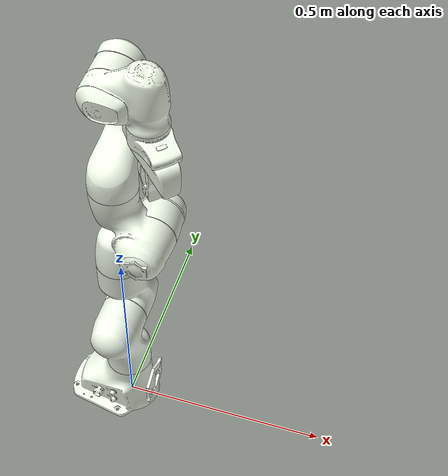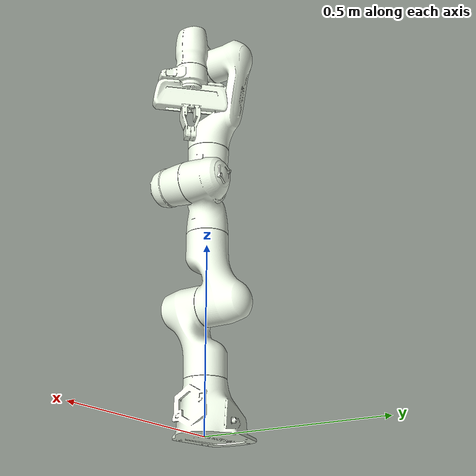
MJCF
<mujoco model="mujoco_panda_model">

    <compiler angle="radian"/>

    <asset>
        <mesh name="link0_collision" file="meshes/collision/link0.stl"/>
        <mesh name="link1_collision" file="meshes/collision/link1.stl"/>
        <mesh name="link2_collision" file="meshes/collision/link2.stl"/>
        <mesh name="link3_collision" file="meshes/collision/link3.stl"/>
        <mesh name="link4_collision" file="meshes/collision/link4.stl"/>
        <mesh name="link5_collision" file="meshes/collision/link5.stl"/>
        <mesh name="link6_collision" file="meshes/collision/link6.stl"/>
        <mesh name="link7_collision" file="meshes/collision/link7.stl"/>
        <mesh name="hand_collision" file="meshes/collision/hand.stl"/>
        <mesh name="finger_collision" file="meshes/collision/finger.stl" scale='1.75 1.0 1.75'/>
        <mesh name="link0_visual" file="meshes/visual/link0.stl"/>
        <mesh name="link1_visual" file="meshes/visual/link1.stl"/>
        <mesh name="link2_visual" file="meshes/visual/link2.stl"/>
        <mesh name="link3_visual" file="meshes/visual/link3.stl"/>
        <mesh name="link4_visual" file="meshes/visual/link4.stl"/>
        <mesh name="link5_visual" file="meshes/visual/link5.stl"/>
        <mesh name="link6_visual" file="meshes/visual/link6.stl"/>
        <mesh name="link7_visual" file="meshes/visual/link7.stl"/>
        <mesh name="hand_visual" file="meshes/visual/hand.stl"/>
        <mesh name="finger_visual" file="meshes/visual/finger.stl" scale='1.75 1.0 1.75'/>
    </asset>
    <default>
        <default class="panda">
            <joint pos="0 0 0" axis="0 0 1" limited="true" damping="100"/>
            <position forcelimited="true" ctrllimited="true" user="1002 40 2001 -0.005 0.005"/>
            <default class="visual">
                <geom contype="0" conaffinity="0" group="0" type="mesh" rgba=".95 .99 .92 1" mass="0"/>
            </default>

            <default class="collision">
                <geom contype="1" conaffinity="1" group="3" type="mesh" rgba=".5 .6 .7 1"/>
            </default>
             <default class="panda_finger">
                <joint damping="100" armature='5'/>
            </default>
        </default>
    </default>

    <compiler meshdir=""/>

    <option cone="elliptic">
        <flag gravity="disable"/>
    </option>

    <worldbody>
        <body name="panda_link0" childclass="panda" >
            <inertial pos="0 0 0" quat="1 0 0 0" mass="3.06" diaginertia="0.3 0.3 0.3" />
            <geom class="visual" mesh="link0_visual"/>

            <body name="panda_link1" pos="0 0 0.333">
                <inertial pos="3.875e-03 2.081e-03 -0.1750" quat="1 0 0 0" mass="2.36" fullinertia="7.0337e-01 7.0661e-01 9.1170e-03 -1.3900e-04 6.7720e-03 1.9169e-02" />
                <joint name="panda_joint1" range="-2.8973 2.8973"/>
                <geom class="visual" mesh="link1_visual"/>
                <geom class="collision" mesh="link1_collision"/>

                <body name="panda_link2" pos="0 0 0" quat="0.707107 -0.707107 0 0">
                    <inertial pos="-3.141e-03 -2.872e-02 3.495e-03" quat="1 0 0 0" mass="2.38" fullinertia="7.9620e-03 2.8110e-02 2.5995e-02 -3.9250e-03 1.0254e-02 7.0400e-04" />
                    <joint name="panda_joint2" range="-1.7628 1.7628"/>
                    <geom class="visual" mesh="link2_visual"/>
                    <geom class="collision" mesh="link2_collision"/>

                    <body name="panda_link3" pos="0 -0.316 0" quat="0.707107 0.707107 0 0">
                        <inertial pos="2.7518e-02 3.9252e-02 -6.6502e-02" quat="1 0 0 0" mass="2.65" fullinertia="3.7242e-02 3.6155e-02 1.0830e-02 -4.7610e-03 -1.1396e-02 -1.2805e-02" />
                        <joint name="panda_joint3" range="-2.8973 2.8973"/>
                        <geom class="visual" mesh="link3_visual"/>
                        <geom class="collision" mesh="link3_collision"/>

                        <body name="panda_link4" pos="0.0825 0 0" quat="0.707107 0.707107 0 0">
                            <inertial pos="-5.317e-02 1.04419e-01 2.7454e-02" quat="1 0 0 0" mass="2.695" fullinertia="2.5853e-02 1.9552e-02 2.8323e-02 7.7960e-03 -1.3320e-03 8.6410e-03" />
                            <joint name="panda_joint4" range="-3.0718 -0.0698"/>
                            <geom class="visual" mesh="link4_visual"/>
                            <geom class="collision" mesh="link4_collision"/>

                            <body name="panda_link5" pos="-0.0825 0.384 0" quat="0.707107 -0.707107 0 0">
                                <inertial pos="-1.1953e-02 4.1065e-02 -3.8437e-02" quat="1 0 0 0" mass="2.98" fullinertia="3.5549e-02 2.9474e-02 8.6270e-03 -2.1170e-03 -4.0370e-03 2.2900e-04" />
                                <joint name="panda_joint5" range="-2.8973 2.8973"/>
                                <geom class="visual" mesh="link5_visual"/>
                                <geom class="collision" mesh="link5_collision"/>

                                <body name="panda_link6" pos="0 0 0" quat="0.707107 0.707107 0 0">
                                    <inertial pos="6.0149e-02 -1.4117e-02 -1.0517e-02" quat="1 0 0 0" mass="1.13" fullinertia="1.9640e-03 4.3540e-03 5.4330e-03 1.0900e-04 -1.1580e-03 3.4100e-04" />
                                    <joint name="panda_joint6" range="-0.0175 3.7525"/>
                                    <geom class="visual" mesh="link6_visual"/>
                                    <geom class="collision" mesh="link6_collision"/>

                                    <body name="panda_link7" pos="0.088 0 0" quat='0.707107 0.707107 0 0'>
                                        <inertial pos="1.0517e-02 -4.252e-03 6.1597e-02" quat="1 0 0 0" mass="0.405" fullinertia="1.2516e-02 1.0027e-02 4.8150e-03 -4.2800e-04 -1.1960e-03 -7.4100e-04" />
                                        <joint name="panda_joint7" range="-1.511 2.8973"/>
                                        <geom class="visual" mesh="link7_visual"/>
                                        <geom class="collision" mesh="link7_collision"/>
                                                                <!--0.215 원래는 0.207이였음. 0.215가 딱 그리퍼 끝에 맞는듯.  -->
                                        <site name='ee_site' pos='0 0 0.215' size="0.005, 0.005, 0.005" quat='0.9239557 0.0 0.0 -0.3824995' rgba='0 0 0 0'/>
                                        <body name="panda_hand" pos="0 0 0.107" quat='0.9239557 0.0 0.0 -0.3824995'>
                                            <inertial pos="0 0 0" euler="0 0 0" mass="0.001" diaginertia="0.0001 0.0001 0.0001" />
                                            <geom class="visual" mesh="hand_visual"/>
                                            <geom class="collision" mesh="hand_collision"/>

                                            <body name="panda_leftfinger" pos="0 0 0.0584" quat="1 0 0 0">
                                                <joint name="panda_finger_joint1"  axis="0 1 0" type="slide" range="0 0.04" damping="100" armature='5'/>
                                                <geom class="visual" mesh="finger_visual"/>
                                                <geom class="collision" mesh="finger_collision" mass="0.001"/>
                                            </body>

                                            <body name="panda_rightfinger" pos="0 0 0.0584" quat="1 0 0 0">
                                                <joint name="panda_finger_joint2" axis="0 -1 0" type="slide" range="0 0.04" damping="100" armature='5'/>
                                                <geom quat="0 0 0 1" class="visual" mesh="finger_visual"/>
                                                <geom quat="0 0 0 1" class="collision" mesh="finger_collision" mass="0.001"/>
                                            </body>

                                        </body>
                                    </body>
                                </body>
                            </body>
                        </body>
                    </body>
                </body>
            </body>
        </body>

    </worldbody>

    <actuator>
        <position name="pos_1" joint="panda_joint1" class="panda" forcerange="-87 87" ctrlrange="-2.8973 2.8973" kp="1000"/>
        <position name="pos_2" joint="panda_joint2" class="panda" forcerange="-87 87" ctrlrange="-1.7628 1.7628" kp="1000" />
        <position name="pos_3" joint="panda_joint3" class="panda" forcerange="-87 87" ctrlrange="-2.8973 2.8973" kp="1000" />
        <position name="pos_4" joint="panda_joint4" class="panda" forcerange="-87 87" ctrlrange="-3.0718 -0.4" kp="1000" />
        <position name="pos_5" joint="panda_joint5" class="panda" forcerange="-12 12" ctrlrange="-2.8973 2.8973" kp="1000" />
        <position name="pos_6" joint="panda_joint6" class="panda" forcerange="-12 12" ctrlrange="-1.6573 2.1127" kp="500" />
        <position name="pos_7" joint="panda_joint7" class="panda" forcerange="-12 12" ctrlrange="-2.8973 2.8973" kp="300" />
        <position name="gripper_pos_actuator_1" joint="panda_finger_joint1" class="panda_finger" kp="500" forcerange="-70 70" ctrlrange="0 0.04"/>
        <position name="gripper_pos_actuator_2" joint="panda_finger_joint2" class="panda_finger" kp="500" forcerange="-70 70" ctrlrange="0 0.04"/>
    </actuator>

    <sensor>
        <force name="ee_force_sensor" site="ee_site"/>
        <torque name="ee_torque_sensor" site="ee_site"/>
    </sensor>

</mujoco>
